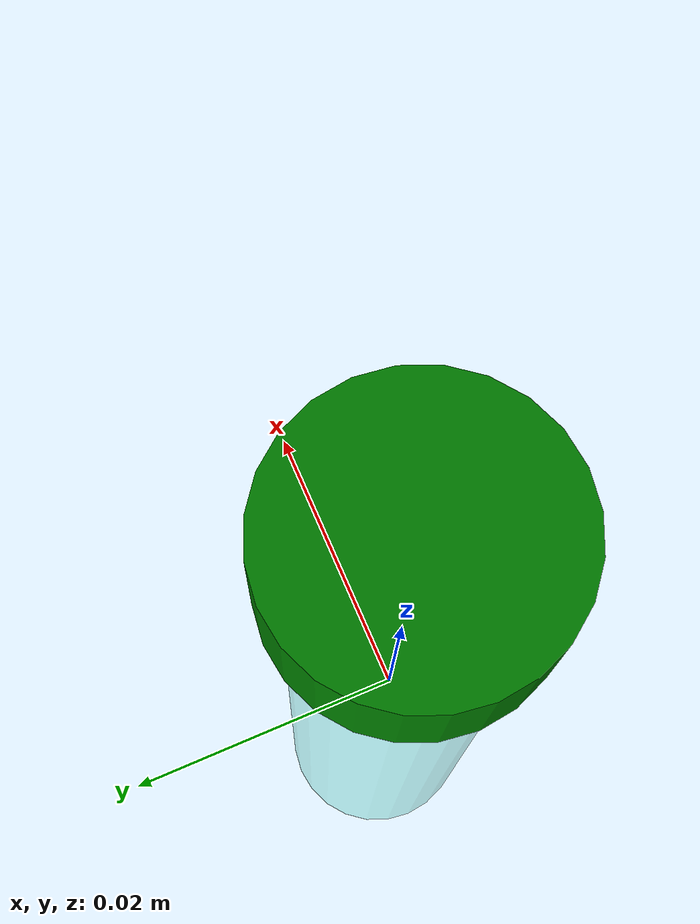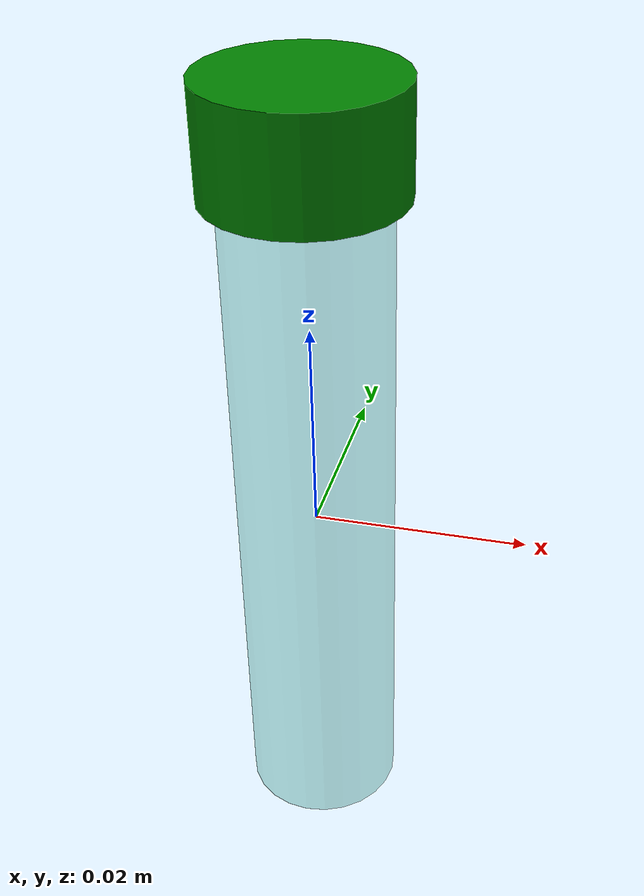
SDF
<?xml version="1.0" ?>
<sdf version="1.5">
  <model name="blue_cylinder">
    <link name="link">
      <pose>0 0 0 0 0 0</pose>
      <inertial>
        <mass>0.05</mass>
        <inertia>
          <ixx>0.00005</ixx>
          <ixy>0</ixy>
          <ixz>0</ixz>
          <iyy>0.00005</iyy>
          <iyz>0</iyz>
          <izz>0.00005</izz>
        </inertia>
      </inertial>

      <collision name="collision_body">
        <pose>0 0 0 0 0 0</pose>
        <geometry>
          <cylinder>
            <radius>0.0075</radius>
            <length>0.065</length>
          </cylinder>
        </geometry>
        <surface>
          <contact>
            <poissons_ratio>0.347</poissons_ratio>
            <elastic_modulus>8.8e+09</elastic_modulus>
            <ode>
              <kp>100000</kp>
              <kd>100</kd>
              <max_vel>100.0</max_vel>
              <min_depth>0.001</min_depth>
            </ode>
          </contact>
          <friction>
            <ode>
              <mu>1.0</mu>
              <mu2>1.0</mu2>
            </ode>
            <torsional>
              <coefficient>1.0</coefficient>
              <use_patch_radius>0</use_patch_radius>
              <surface_radius>0.01</surface_radius>
            </torsional>
          </friction>
        </surface>
      </collision>

      <collision name="collision_cap">
        <pose>0 0 0.0375 0 0 0</pose>
        <geometry>
          <cylinder>
            <radius>0.009</radius>
            <length>0.01</length>
          </cylinder>
        </geometry>
        <surface>
          <contact>
            <poissons_ratio>0.347</poissons_ratio>
            <elastic_modulus>8.8e+09</elastic_modulus>
            <ode>
              <kp>100000</kp>
              <kd>100</kd>
              <max_vel>100.0</max_vel>
              <min_depth>0.001</min_depth>
            </ode>
          </contact>
          <friction>
            <ode>
              <mu>1.0</mu>
              <mu2>1.0</mu2>
            </ode>
            <torsional>
              <coefficient>1.0</coefficient>
              <use_patch_radius>0</use_patch_radius>
              <surface_radius>0.01</surface_radius>
            </torsional>
          </friction>
        </surface>
      </collision>

      <visual name="visual_body">
        <pose>0 0 0 0 0 0</pose>
        <geometry>
          <cylinder>
            <radius>0.0075</radius>
            <length>0.065</length>
          </cylinder>
        </geometry>
        <material>
          <ambient>0.5686 1 0.9686 0.5</ambient>
          <diffuse>0.5686 1 0.9686 0.5</diffuse>
        </material>
      </visual>

      <visual name="visual_cap">
        <pose>0 0 0.0375 0 0 0</pose>
        <geometry>
          <cylinder>
            <radius>0.009</radius>
            <length>0.01</length>
          </cylinder>
        </geometry>
        <material>
          <ambient>0.0 0.5 0.0 1</ambient>
          <diffuse>0.0 0.5 0.0 1</diffuse>
        </material>
      </visual>

    </link>
  </model>
</sdf>
